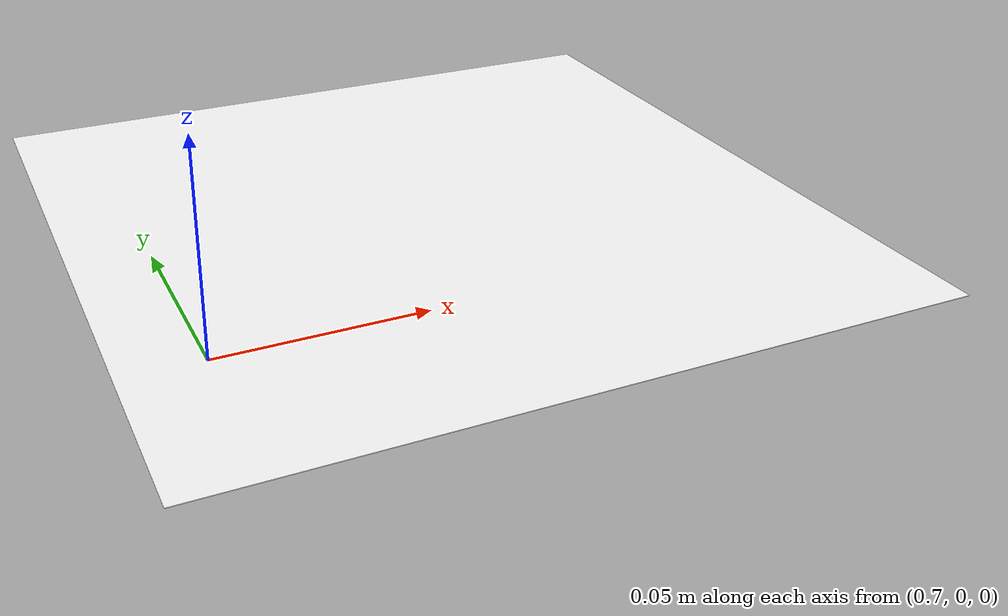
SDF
<?xml version="1.0" encoding="UTF-8"?>
<sdf version='1.9'>
  <model name='arucotag_205'>
    <static>true</static>
    <pose>0.75 0 0.025 0 0 0</pose>
    <link name='base'>
      <visual name='base_visual'>
        <geometry>
          <plane>
            <normal>0 0 1</normal>
            <size>0.15 0.15</size>
          </plane>
        </geometry>
        <material>
          <diffuse>1 1 1 1</diffuse>
          <specular>0.4 0.4 0.4 1</specular>
          <pbr>
            <metal>
              <albedo_map>model://arucotag_205/arucotag_205.png</albedo_map>
            </metal>
          </pbr>
        </material>
      </visual>
    </link>
  </model>
</sdf>
